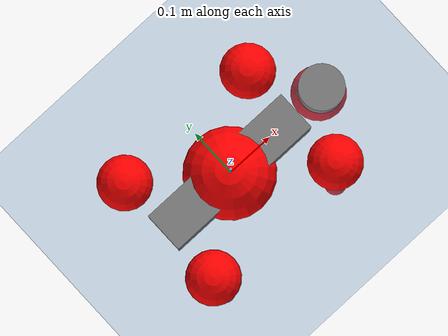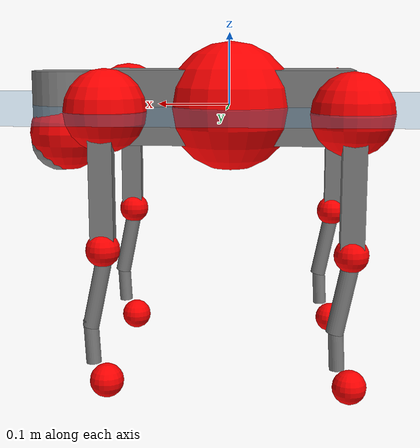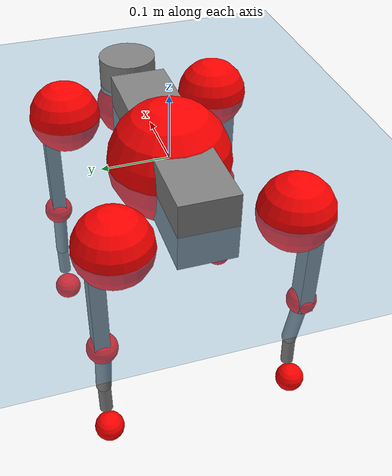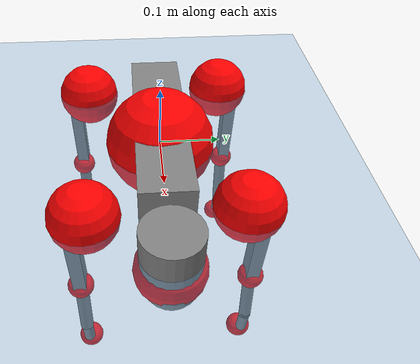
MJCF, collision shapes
<mujoco model="go2">
  <compiler angle="radian" assetdir="assets" balanceinertia="true" inertiafromgeom="false"/>

  <option timestep="0.005" density="1.2" viscosity="2e-05"/>

  <size nkey="1"/>

  <visual>
    <quality shadowsize="8192"/>
    <map shadowclip="0.5"/>
  </visual>

  <default>
    <default class="/">
      <geom contype="0" conaffinity="0" group="1" solref="-1000 -80"/>
      <site size="0.01 0.005 0.005" group="5"/>
      <general forcelimited="true" biastype="affine" gainprm="20" biasprm="0 -20 -0.5"/>
      <default class="go2">
        <joint armature="0.01" damping="0.01" frictionloss="0.2"/>
        <geom condim="1" margin="0.001"/>
        <default class="visual">
          <geom type="mesh" group="2"/>
        </default>
        <default class="collision">
          <geom group="3"/>
          <default class="foot">
            <geom size="0.022 0 0" condim="6" priority="1" friction="0.8 0.02 0.01" solimp="0.015 1 0.022"/>
          </default>
        </default>
        <default class="reward_collision_sphere">
          <geom group="5" rgba="1 0 0 1"/>
        </default>
      </default>
    </default>
  </default>

  <asset>
    <texture type="skybox" colorspace="auto" name="//unnamed_texture_0" builtin="gradient" rgb1="0.95 0.95 0.95" rgb2="0.95 0.95 0.95" width="100" height="600"/>
    <texture type="2d" colorspace="auto" name="texplane" builtin="checker" rgb1="0.345 0.575 0.748" rgb2="0.345 0.575 0.748" markrgb="1 1 1" width="512" height="512"/>
    <material name="MatPlane" class="/" texture="texplane" texuniform="true" texrepeat="2 2" specular="0.9"/>
    <material name="metal" class="/" rgba="0.9 0.95 0.95 1"/>
    <material name="black" class="/" rgba="0 0 0 1"/>
    <material name="white" class="/"/>
    <material name="gray" class="/" rgba="0.671705 0.692426 0.77427 1"/>
    <mesh name="base_0" class="/" file="base_0.obj"/>
    <mesh name="base_1" class="/" file="base_1.obj"/>
    <mesh name="base_2" class="/" file="base_2.obj"/>
    <mesh name="base_3" class="/" file="base_3.obj"/>
    <mesh name="base_4" class="/" file="base_4.obj"/>
    <mesh name="hip_0" class="/" file="hip_0.obj"/>
    <mesh name="hip_1" class="/" file="hip_1.obj"/>
    <mesh name="thigh_0" class="/" file="thigh_0.obj"/>
    <mesh name="thigh_1" class="/" file="thigh_1.obj"/>
    <mesh name="thigh_mirror_0" class="/" file="thigh_mirror_0.obj"/>
    <mesh name="thigh_mirror_1" class="/" file="thigh_mirror_1.obj"/>
    <mesh name="calf_0" class="/" file="calf_0.obj"/>
    <mesh name="calf_1" class="/" file="calf_1.obj"/>
    <mesh name="calf_mirror_0" class="/" file="calf_mirror_0.obj"/>
    <mesh name="calf_mirror_1" class="/" file="calf_mirror_1.obj"/>
    <mesh name="foot" class="/" file="foot.obj"/>
  </asset>

  <worldbody>
    <geom name="floor" class="/" size="100 100 0.125" type="plane" group="0" material="MatPlane"/>
    <light name="toplight_shadow" class="/" pos="0 0 5" dir="0.0990148 0.0990148 -0.990148" type="directional" ambient="0.04 0.04 0.04" diffuse="0.55 0.55 0.55" specular="0.12 0.12 0.12"/>
    <light name="toplight_fill" class="/" pos="0 0 5" dir="0.0990148 0.0990148 -0.990148" type="directional" castshadow="false" ambient="0.04 0.04 0.04" diffuse="0.3 0.3 0.3" specular="0.08 0.08 0.08"/>
    <body name="trunk" childclass="go2" pos="-0.00240713 0.000127939 -0.00250641" quat="1 -0.000603506 -1.48252e-05 0.000101171">
      <inertial pos="0.0193211 0.00275652 -0.00549846" quat="0.00175073 0.719295 0.000540099 0.694702" mass="5.59877" diaginertia="0.0445778 0.136415 0.0108044"/>
      <joint name="//unnamed_joint_0" type="free" armature="0" damping="0" frictionloss="0"/>
      <geom name="//unnamed_geom_1" class="visual" material="black" mesh="base_0"/>
      <geom name="//unnamed_geom_2" class="visual" material="black" mesh="base_1"/>
      <geom name="//unnamed_geom_3" class="visual" material="black" mesh="base_2"/>
      <geom name="//unnamed_geom_4" class="visual" material="white" mesh="base_3"/>
      <geom name="//unnamed_geom_5" class="visual" material="gray" mesh="base_4"/>
      <geom name="trunk_1" class="collision" size="0.171328 0.0425815 0.0519175" type="box"/>
      <geom name="trunk_2" class="collision" size="0.0455417 0.0409875" pos="0.237661 0 0.00837989" type="cylinder"/>
      <geom name="trunk_3" class="collision" size="0.0428092" pos="0.244332 0 -0.0502793"/>
      <geom name="//unnamed_geom_9" class="reward_collision_sphere" size="0.0910833"/>
      <geom name="//unnamed_geom_10" class="reward_collision_sphere" size="0.05465" pos="0.233491 0 -0.0377095"/>
      <site name="imu" pos="-0.0219311 0.0109188 0.0310849" size="0.00910833"/>
      <camera name="track" pos="0 -2.12123 0" quat="0.707107 0.707107 0 0" mode="trackcom"/>
      <camera name="ego_camera" pos="0.260176 0 0.0377095" quat="-0.5 -0.5 0.5 0.5"/>
      <body name="FL_hip" pos="0.158707 0.0471912 0.00265027" quat="0.999999 0.000558733 0.000864371 0.000761688">
        <inertial pos="-0.00190786 0.00122997 -0.00178643" quat="0.497551 0.497289 0.505656 0.499458" mass="0.509747" diaginertia="0.000354775 0.000845454 0.000198635"/>
        <joint name="FL_hip_joint" pos="0 0 0" axis="0.999913 -0.0126809 0.00352217" range="-1.08876 1.03504" armature="0.00925225" damping="0.0214998" frictionloss="0.184591"/>
        <geom name="//unnamed_geom_11" class="visual" material="metal" mesh="hip_0"/>
        <geom name="//unnamed_geom_12" class="visual" material="gray" mesh="hip_1"/>
        <geom name="//unnamed_geom_13" class="collision" size="0.0418983 0.0182167" pos="0 0.0848492 0" quat="0.707107 0.707107 0 0" type="cylinder"/>
        <geom name="//unnamed_geom_14" class="reward_collision_sphere" size="0.05465" pos="0 0.074243 0"/>
        <body name="FL_thigh" pos="0.00174137 0.100574 0.00188513" quat="1 -2.55453e-05 5.97047e-05 6.64337e-05">
          <inertial pos="-0.00225888 -0.0251844 -0.0263479" quat="0.829455 0.0849191 -0.0197169 0.551728" mass="0.863657" diaginertia="0.00244246 0.00774042 0.000346419"/>
          <joint name="FL_thigh_joint" pos="0 0 0" axis="-0.00991898 0.999936 0.00545773" stiffness="0.0164956" range="-1.51803 3.48848" armature="0.00791166" damping="0.00253685" frictionloss="0.15705"/>
          <geom name="//unnamed_geom_15" class="visual" material="metal" mesh="thigh_0"/>
          <geom name="//unnamed_geom_16" class="visual" material="gray" mesh="thigh_1"/>
          <geom name="//unnamed_geom_17" class="collision" size="0.0970038 0.0111577 0.0154842" pos="0 0 -0.0892458" quat="0.707107 0 0.707107 0" type="box"/>
          <body name="FL_calf" pos="0.000218655 0.000966061 -0.180556" quat="1 0.000353567 -0.000431912 -0.000677858">
            <inertial pos="0.00512076 -0.000171486 -0.116824" quat="0.704119 0.00308964 -0.0143891 0.70993" mass="0.181747" diaginertia="0.00056649 0.00193621 2.1918e-05"/>
            <joint name="FL_calf_joint" pos="0 0 0" axis="0.00424009 0.999742 -0.022328" stiffness="0.00733033" range="-2.70063 -0.836924" armature="0.0100705" damping="0.00737421" frictionloss="0.203116"/>
            <geom name="//unnamed_geom_18" class="visual" material="gray" mesh="calf_0"/>
            <geom name="//unnamed_geom_19" class="visual" material="black" mesh="calf_1"/>
            <geom name="FL_calf0" class="collision" size="0.01093 0.05465" pos="0.00667117 0 -0.0502793" quat="0.994493 0 -0.104807 0" type="cylinder"/>
            <geom name="//unnamed_geom_21" class="collision" size="0.0100192 0.0296021" pos="0.0166779 0 -0.124022" quat="0.999688 0 0.0249974 0" type="cylinder"/>
            <geom name="//unnamed_geom_22" class="visual" pos="0 0 -0.178492" quat="1 0 0 0" material="black" mesh="foot"/>
            <geom name="FL_foot" class="foot" size="0.0158204" pos="-0.00166779 0 -0.178492"/>
            <geom name="//unnamed_geom_24" class="reward_collision_sphere" size="0.0227708"/>
            <geom name="//unnamed_geom_25" class="reward_collision_sphere" size="0.0227708" pos="-0.00166779 0 -0.178492"/>
            <site name="FL_foot" class="foot" pos="-0.00166779 0 -0.178492" size="0.00910833"/>
          </body>
        </body>
      </body>
      <body name="FR_hip" pos="0.163471 -0.047103 0.00188246" quat="1 -2.06299e-05 -0.000147915 -4.08239e-05">
        <inertial pos="-0.00209876 -0.00147049 -0.000190586" quat="0.498247 0.505472 0.499267 0.496971" mass="0.515082" diaginertia="0.000343737 0.000777627 0.000189318"/>
        <joint name="FR_hip_joint" pos="0 0 0" axis="0.999931 0.00133432 -0.0116378" range="-0.99601 1.05589" armature="0.0101929" damping="0.0122314" frictionloss="0.183688"/>
        <geom name="//unnamed_geom_26" class="visual" pos="0 1.93942e-09 8.31859e-08" quat="4.63268e-05 1 0 0" material="metal" mesh="hip_0"/>
        <geom name="//unnamed_geom_27" class="visual" pos="0 3.14404e-09 -2.05751e-07" quat="4.63268e-05 1 0 0" material="gray" mesh="hip_1"/>
        <geom name="//unnamed_geom_28" class="collision" size="0.0418983 0.0182167" pos="0 -0.0848492 0" quat="0.707107 0.707107 0 0" type="cylinder"/>
        <geom name="//unnamed_geom_29" class="reward_collision_sphere" size="0.05465" pos="0 -0.074243 0"/>
        <body name="FR_thigh" pos="0.000222115 -0.09905 0.00311297" quat="1 0.000110967 -0.000143191 9.10513e-05">
          <inertial pos="-0.000828178 0.0230206 -0.027616" quat="0.546989 -0.0226414 0.0898087 0.832" mass="0.862113" diaginertia="0.00231698 0.00734221 0.000352025"/>
          <joint name="FR_thigh_joint" pos="0 0 0" axis="0.0108752 -0.99993 0.0046265" range="-3.51432 1.57466" armature="0.00890626" damping="0.000740138" frictionloss="0.20613"/>
          <geom name="//unnamed_geom_30" class="visual" material="metal" mesh="thigh_mirror_0"/>
          <geom name="//unnamed_geom_31" class="visual" material="gray" mesh="thigh_mirror_1"/>
          <geom name="//unnamed_geom_32" class="collision" size="0.0970038 0.0111577 0.0154842" pos="0 0 -0.0892458" quat="0.707107 0 0.707107 0" type="box"/>
          <body name="FR_calf" pos="-0.00203489 -0.000462672 -0.180979" quat="1 0.00014437 2.07017e-05 0.000118895">
            <inertial pos="0.0054455 0.000610574 -0.11952" quat="0.70381 -0.0011762 8.36513e-05 0.710387" mass="0.183894" diaginertia="0.000597733 0.00196053 2.16863e-05"/>
            <joint name="FR_calf_joint" pos="0 0 0" axis="0.00435163 -0.999981 -0.00436007" stiffness="0.00778773" range="0.833265 2.74362" armature="0.00785692" damping="0.0105961" frictionloss="0.157598"/>
            <geom name="//unnamed_geom_33" class="visual" material="gray" mesh="calf_mirror_0"/>
            <geom name="//unnamed_geom_34" class="visual" material="black" mesh="calf_mirror_1"/>
            <geom name="FR_calf0" class="collision" size="0.0118408 0.05465" pos="0.00833897 0 -0.0502793" quat="0.995004 0 -0.0998334 0" type="cylinder"/>
            <geom name="//unnamed_geom_36" class="collision" size="0.0100192 0.0296021" pos="0.0166779 0 -0.124022" quat="0.999688 0 0.0249974 0" type="cylinder"/>
            <geom name="//unnamed_geom_37" class="visual" pos="0 0 -0.178492" quat="1 0 0 0" material="black" mesh="foot"/>
            <geom name="FR_foot" class="foot" size="0.0197957" pos="-0.00166779 0 -0.178492"/>
            <geom name="//unnamed_geom_39" class="reward_collision_sphere" size="0.0227708"/>
            <geom name="//unnamed_geom_40" class="reward_collision_sphere" size="0.0227708" pos="-0.00166779 0 -0.178492"/>
            <site name="FR_foot" class="foot" pos="-0.00166779 0 -0.178492" size="0.00910833"/>
          </body>
        </body>
      </body>
      <body name="RL_hip" pos="-0.160472 0.0482408 -0.000642595" quat="1 -0.000370785 0.000157636 7.11504e-06">
        <inertial pos="0.00698845 0.000500378 -0.000864446" quat="0.498135 0.492693 0.506366 0.502701" mass="0.516411" diaginertia="0.000367053 0.00083049 0.000201142"/>
        <joint name="RL_hip_joint" pos="0 0 0" axis="-0.99975 0.0112768 0.0192864" stiffness="0.0043688" range="-1.06717 1.00688" armature="0.00906579" damping="0" frictionloss="0.175862"/>
        <geom name="//unnamed_geom_41" class="visual" pos="3.56497e-11 0 6.98818e-09" quat="4.63268e-05 0 1 0" material="metal" mesh="hip_0"/>
        <geom name="//unnamed_geom_42" class="visual" pos="5.77925e-11 0 6.19752e-09" quat="4.63268e-05 0 1 0" material="gray" mesh="hip_1"/>
        <geom name="//unnamed_geom_43" class="collision" size="0.0418983 0.0182167" pos="0 0.0848492 0" quat="0.707107 0.707107 0 0" type="cylinder"/>
        <geom name="//unnamed_geom_44" class="reward_collision_sphere" size="0.05465" pos="0 0.074243 0"/>
        <body name="RL_thigh" pos="-0.000527958 0.101657 -0.00101257" quat="1 -0.000101891 -0.000226696 -0.000402483">
          <inertial pos="-0.00324362 -0.0235925 -0.0256367" quat="0.824946 0.0754554 -0.0239153 0.559642" mass="0.878914" diaginertia="0.00245485 0.00824882 0.000381754"/>
          <joint name="RL_thigh_joint" pos="0 0 0" axis="0.00307163 0.999968 -0.00733287" stiffness="9.1894e-05" range="-0.528831 4.53117" armature="0.00940109" damping="0" frictionloss="0.180584"/>
          <geom name="//unnamed_geom_45" class="visual" material="metal" mesh="thigh_0"/>
          <geom name="//unnamed_geom_46" class="visual" material="gray" mesh="thigh_1"/>
          <geom name="//unnamed_geom_47" class="collision" size="0.0970038 0.0111577 0.0154842" pos="0 0 -0.0892458" quat="0.707107 0 0.707107 0" type="box"/>
          <body name="RL_calf" pos="-8.26781e-05 -0.00197765 -0.177111" quat="0.999999 -0.000512483 0.00102989 0.000184822">
            <inertial pos="0.00247369 -0.00264845 -0.118862" quat="0.709663 0.012399 -0.00756927 0.704391" mass="0.188157" diaginertia="0.000604348 0.00202076 2.33224e-05"/>
            <joint name="RL_calf_joint" pos="0 0 0" axis="-0.0194375 0.999725 0.013096" stiffness="0.0148699" range="-2.73345 -0.786006" armature="0.00997051" damping="0" frictionloss="0.165697"/>
            <geom name="//unnamed_geom_48" class="visual" material="gray" mesh="calf_0"/>
            <geom name="//unnamed_geom_49" class="visual" material="black" mesh="calf_1"/>
            <geom name="RL_calf0" class="collision" size="0.0118408 0.05465" pos="0.00833897 0 -0.0502793" quat="0.995004 0 -0.0998334 0" type="cylinder"/>
            <geom name="//unnamed_geom_51" class="collision" size="0.0100192 0.0296021" pos="0.0166779 0 -0.124022" quat="0.999688 0 0.0249974 0" type="cylinder"/>
            <geom name="//unnamed_geom_52" class="visual" pos="0 0 -0.178492" quat="1 0 0 0" material="black" mesh="foot"/>
            <geom name="RL_foot" class="foot" size="0.0174816" pos="-0.00166779 0 -0.178492"/>
            <geom name="//unnamed_geom_54" class="reward_collision_sphere" size="0.0227708"/>
            <geom name="//unnamed_geom_55" class="reward_collision_sphere" size="0.0227708" pos="-0.00166779 0 -0.178492"/>
            <site name="RL_foot" class="foot" pos="-0.00166779 0 -0.178492" size="0.00910833"/>
          </body>
        </body>
      </body>
      <body name="RR_hip" pos="-0.158223 -0.0519694 -0.00459285" quat="1 0.000330286 0.000221861 -0.000860916">
        <inertial pos="0.00266554 -0.00110467 0.00150113" quat="0.499653 0.49305 0.497219 0.509924" mass="0.514517" diaginertia="0.00036165 0.000810239 0.000198301"/>
        <joint name="RR_hip_joint" pos="0 0 0" axis="-0.999943 0.00986983 -0.00414573" stiffness="0.00341384" range="-0.989749 1.07592" armature="0.00787483" damping="0" frictionloss="0.198472"/>
        <geom name="//unnamed_geom_56" class="visual" pos="-2.78007e-11 1.93942e-09 -7.61977e-08" quat="2.14617e-09 4.63268e-05 4.63268e-05 -1" material="metal" mesh="hip_0"/>
        <geom name="//unnamed_geom_57" class="visual" pos="-7.72066e-11 3.14404e-09 2.11948e-07" quat="2.14617e-09 4.63268e-05 4.63268e-05 -1" material="gray" mesh="hip_1"/>
        <geom name="//unnamed_geom_58" class="collision" size="0.0418983 0.0182167" pos="0 -0.0848492 0" quat="0.707107 0.707107 0 0" type="cylinder"/>
        <geom name="//unnamed_geom_59" class="reward_collision_sphere" size="0.05465" pos="0 -0.074243 0"/>
        <body name="RR_thigh" pos="-0.00144948 -0.103202 0.00262442" quat="1 0.000541777 0.000419132 0.000315343">
          <inertial pos="-0.00424064 0.0232428 -0.0274858" quat="0.554631 -0.0179534 0.084279 0.827623" mass="0.870451" diaginertia="0.00234461 0.00796617 0.000362006"/>
          <joint name="RR_thigh_joint" pos="0 0 0" axis="-0.0116162 -0.999932 -0.00120847" stiffness="0.00937669" range="-4.52877 0.517504" armature="0.00889963" damping="0.0229861" frictionloss="0.199139"/>
          <geom name="//unnamed_geom_60" class="visual" material="metal" mesh="thigh_mirror_0"/>
          <geom name="//unnamed_geom_61" class="visual" material="gray" mesh="thigh_mirror_1"/>
          <geom name="//unnamed_geom_62" class="collision" size="0.0970038 0.0111577 0.0154842" pos="0 0 -0.0892458" quat="0.707107 0 0.707107 0" type="box"/>
          <body name="RR_calf" pos="0.00393822 -0.000950286 -0.176374" quat="1 0.00011795 -0.000217672 -0.000216321">
            <inertial pos="0.00414096 0.00176435 -0.117944" quat="0.698339 -0.00663045 0.00957083 0.715673" mass="0.181974" diaginertia="0.000619203 0.00193474 2.19259e-05"/>
            <joint name="RR_calf_joint" pos="0 0 0" axis="0.00246652 -0.999997 -0.000617602" range="0.788011 2.73608" armature="0.00794175" damping="0.00534039" frictionloss="0.158664"/>
            <geom name="//unnamed_geom_63" class="visual" material="gray" mesh="calf_mirror_0"/>
            <geom name="//unnamed_geom_64" class="visual" material="black" mesh="calf_mirror_1"/>
            <geom name="RR_calf0" class="collision" size="0.0118408 0.05465" pos="0.00833897 0 -0.0502793" quat="0.995004 0 -0.0998334 0" type="cylinder"/>
            <geom name="//unnamed_geom_66" class="collision" size="0.0100192 0.0296021" pos="0.0166779 0 -0.124022" quat="0.999688 0 0.0249974 0" type="cylinder"/>
            <geom name="//unnamed_geom_67" class="visual" pos="0 0 -0.178492" quat="1 0 0 0" material="black" mesh="foot"/>
            <geom name="RR_foot" class="foot" size="0.0199672" pos="-0.00166779 0 -0.178492"/>
            <geom name="//unnamed_geom_69" class="reward_collision_sphere" size="0.0227708"/>
            <geom name="//unnamed_geom_70" class="reward_collision_sphere" size="0.0227708" pos="-0.00166779 0 -0.178492"/>
            <site name="RR_foot" class="foot" pos="-0.00166779 0 -0.178492" size="0.00910833"/>
          </body>
        </body>
      </body>
    </body>
  </worldbody>

  <contact>
    <pair class="/" geom1="floor" geom2="FL_foot" name="//unnamed_contact_0"/>
    <pair class="/" geom1="floor" geom2="FR_foot" name="//unnamed_contact_1"/>
    <pair class="/" geom1="floor" geom2="RL_foot" name="//unnamed_contact_2"/>
    <pair class="/" geom1="floor" geom2="RR_foot" name="//unnamed_contact_3"/>
  </contact>

  <actuator>
    <general name="FL_hip" class="/" joint="FL_hip_joint" forcerange="-21.1241 21.1241" gainprm="19.1768" biasprm="0 -19.1768 -0.444579"/>
    <general name="FL_thigh" class="/" joint="FL_thigh_joint" forcerange="-19.8191 19.8191" gainprm="19.1768" biasprm="0 -19.1768 -0.444579"/>
    <general name="FL_calf" class="/" joint="FL_calf_joint" forcerange="-39.3793 39.3793" gainprm="19.1768" biasprm="0 -19.1768 -0.444579"/>
    <general name="FR_hip" class="/" joint="FR_hip_joint" forcerange="-22.1189 22.1189" gainprm="19.1768" biasprm="0 -19.1768 -0.444579"/>
    <general name="FR_thigh" class="/" joint="FR_thigh_joint" forcerange="-23.3548 23.3548" gainprm="19.1768" biasprm="0 -19.1768 -0.444579"/>
    <general name="FR_calf" class="/" joint="FR_calf_joint" forcerange="-42.8125 42.8125" gainprm="19.1768" biasprm="0 -19.1768 -0.444579"/>
    <general name="RL_hip" class="/" joint="RL_hip_joint" forcerange="-20.2265 20.2265" gainprm="19.1768" biasprm="0 -19.1768 -0.444579"/>
    <general name="RL_thigh" class="/" joint="RL_thigh_joint" forcerange="-19.691 19.691" gainprm="19.1768" biasprm="0 -19.1768 -0.444579"/>
    <general name="RL_calf" class="/" joint="RL_calf_joint" forcerange="-43.6164 43.6164" gainprm="19.1768" biasprm="0 -19.1768 -0.444579"/>
    <general name="RR_hip" class="/" joint="RR_hip_joint" forcerange="-20.5004 20.5004" gainprm="19.1768" biasprm="0 -19.1768 -0.444579"/>
    <general name="RR_thigh" class="/" joint="RR_thigh_joint" forcerange="-20.5984 20.5984" gainprm="19.1768" biasprm="0 -19.1768 -0.444579"/>
    <general name="RR_calf" class="/" joint="RR_calf_joint" forcerange="-44.7418 44.7418" gainprm="19.1768" biasprm="0 -19.1768 -0.444579"/>
  </actuator>

  <sensor>
    <gyro site="imu" name="imu_angular_velocity"/>
    <velocimeter site="imu" name="imu_linear_velocity"/>
    <framelinvel objtype="site" objname="FL_foot" name="FL_foot_global_linear_velocity"/>
    <framelinvel objtype="site" objname="FR_foot" name="FR_foot_global_linear_velocity"/>
    <framelinvel objtype="site" objname="RL_foot" name="RL_foot_global_linear_velocity"/>
    <framelinvel objtype="site" objname="RR_foot" name="RR_foot_global_linear_velocity"/>
  </sensor>

  <keyframe>
    <key name="home" qpos="0 0 0.325 1 0 0 0 0.1 0.8 -1.5 -0.1 -0.8 1.5 -0.1 0.8 -1.5 0.1 -0.8 1.5"/>
  </keyframe>
</mujoco>
